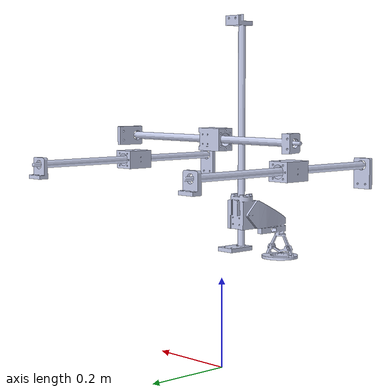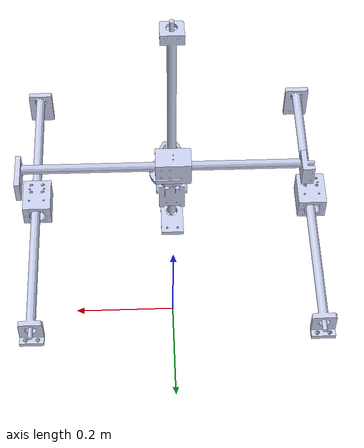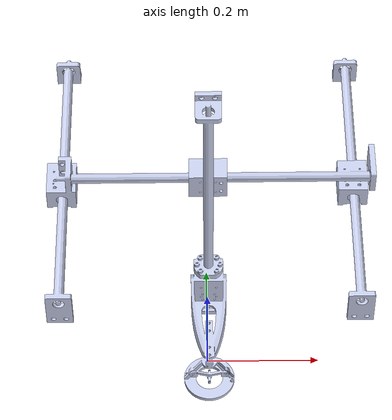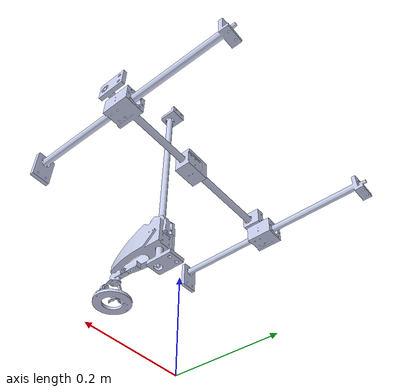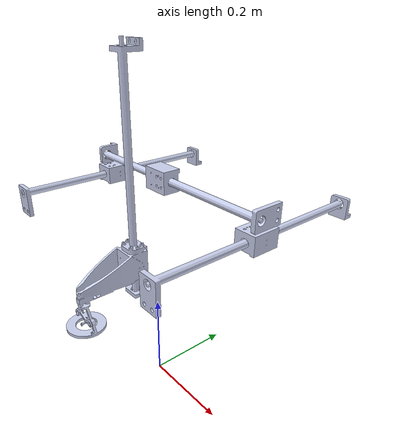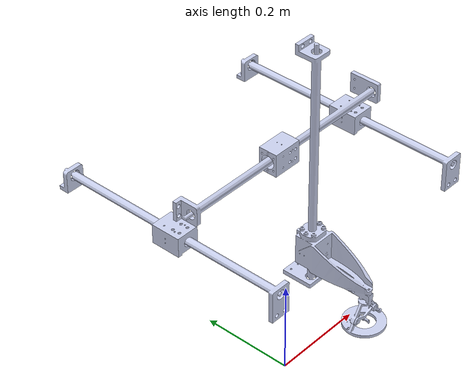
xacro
<?xml version="1.0" encoding="utf-8"?>
<robot xmlns:xacro="http://www.ros.org/wiki/xacro" name="gantry">

  <!-- Empty link to referr everything to -->
  <link name="world" />
  <!-- Include arm and hand xacro files-->
  <xacro:include filename="$(find gantry_test)/description/gantry.xacro" />

  <!-- call the arm macro-->
  <xacro:gantry />

  <xacro:include filename="$(find gantry_test)/description/gantry.gazebo.xacro" />
  <xacro:include filename="$(find gantry_test)/description/gantry.control.xacro" />
</robot>

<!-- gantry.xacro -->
<robot xmlns:xacro="http://www.ros.org/wiki/xacro" name="gantry">

  <xacro:macro name="gantry"
    params="arm_id:='gantry' description_pkg:='gantry_test' connected_to:='' xyz:='0 0 0' rpy:='0 0 0'">
    <xacro:unless value="${not connected_to}">
      <joint name="${arm_id}_joint_${connected_to}" type="fixed">
        <parent link="${connected_to}" />
        <child link="base_link_inertia" />
        <origin rpy="${rpy}" xyz="${xyz}" />
      </joint>
    </xacro:unless>

  <joint
    name="base_joint"
    type="fixed">
    <parent
      link="world" />
    <child
      link="base_link_inertia" />
    <origin rpy="0 0 0" xyz="0.0 0.0 0.0"/>
  </joint>

  <link
    name="base_link_inertia">
    <inertial>
      <origin
        xyz="0.00034882 0.032516 0.24303"
        rpy="0 0 0" />
      <mass
        value="10" />
      <inertia
        ixx="0.12532"
        ixy="-3.6303E-09"
        ixz="8.8835E-07"
        iyy="0.041971"
        iyz="-4.7939E-07"
        izz="0.13107" />
    </inertial>
    <visual>
      <origin
        xyz="0 0 0"
        rpy="0 0 0" />
      <geometry>
        <mesh
          filename="file://$(find gantry_test)/meshes/visual/base_link.stl" scale="0.001  0.001 0.001" />
      </geometry>
      <material
        name="">
        <color
          rgba="0.79216 0.81961 0.93333 1" />
      </material>
    </visual>
    <collision>
      <origin
        xyz="0 0 0"
        rpy="0 0 0" />
      <geometry>
        <mesh
          filename="file://$(find gantry_test)/meshes/collision/base_link.dae" scale="0.001  0.001 0.001" />
      </geometry>
    </collision>
  </link>
  <link
    name="x_link">
    <inertial>
      <origin
        xyz="-0.048186 0.050712 0.0022474"
        rpy="0 0 0" />
      <mass
        value="1.6" />
      <inertia
        ixx="0.00043215"
        ixy="1.9114E-09"
        ixz="2.3613E-07"
        iyy="0.011891"
        iyz="2.7571E-05"
        izz="0.01197" />
    </inertial>
    <visual>
      <origin
        xyz="0 0 0"
        rpy="0 0 0" />
      <geometry>
        <mesh
          filename="file://$(find gantry_test)/meshes/visual/x_link.stl" scale="0.001  0.001 0.001" />
      </geometry>
      <material
        name="">
        <color
          rgba="0.79216 0.81961 0.93333 1" />
      </material>
    </visual>
    <collision>
      <origin
        xyz="0 0 0"
        rpy="0 0 0" />
      <geometry>
        <mesh
          filename="file://$(find gantry_test)/meshes/collision/x_link.dae" scale="0.001  0.001 0.001" />
      </geometry>
    </collision>
  </link>
  <joint
    name="x_joint"
    type="prismatic">
    <origin
      xyz="0 0.05 0.45"
      rpy="1.5708 -2.0964E-05 0" />
    <parent
      link="base_link_inertia" />
    <child
      link="x_link" />
    <axis
      xyz="0 0 -1" />
    <limit
      lower="-0.17"
      upper="0.17"
      effort="100"
      velocity="1" />
  </joint>
  <link
    name="y_link">
    <inertial>
      <origin
        xyz="-0.11023 -0.047388 0.010097"
        rpy="0 0 0" />
      <mass
        value="1" />
      <inertia
        ixx="0.00027954"
        ixy="3.1449E-07"
        ixz="1.1171E-08"
        iyy="0.0072125"
        iyz="4.0095E-07"
        izz="0.0071657" />
    </inertial>
    <visual>
      <origin
        xyz="0 0 0"
        rpy="0 0 0" />
      <geometry>
        <mesh
          filename="file://$(find gantry_test)/meshes/visual/y_link.stl" scale="0.001  0.001 0.001" />
      </geometry>
      <material
        name="">
        <color
          rgba="0.79216 0.81961 0.93333 1" />
      </material>
    </visual>
    <collision>
      <origin
        xyz="0 0 0"
        rpy="0 0 0" />
      <geometry>
        <mesh
          filename="file://$(find gantry_test)/meshes/collision/y_link.dae" scale="0.001  0.001 0.001" />
      </geometry>
    </collision>
  </link>
  <joint
    name="y_joint"
    type="prismatic">
    <origin
      xyz="-0.01 0.053 0.0295"
      rpy="-1.5708 0 -1.5708" />
    <parent
      link="x_link" />
    <child
      link="y_link" />
    <axis
      xyz="0 0 1" />
    <limit
      lower="-0.16"
      upper="0.16"
      effort="100"
      velocity="1" />
  </joint>
  <link
    name="z_link">
    <inertial>
      <origin
        xyz="6.1912E-08 0.0017903 -0.037699"
        rpy="0 0 0" />
      <mass
        value="0.12177" />
      <inertia
        ixx="4.7832E-05"
        ixy="4.813E-11"
        ixz="5.2651E-11"
        iyy="5.6754E-05"
        iyz="4.1076E-07"
        izz="3.9828E-05" />
    </inertial>
    <visual>
      <origin
        xyz="0 0 0"
        rpy="0 0 0" />
      <geometry>
        <mesh
          filename="file://$(find gantry_test)/meshes/visual/z_link.stl" scale="0.001  0.001 0.001" />
      </geometry>
      <material
        name="">
        <color
          rgba="0.79216 0.81961 0.93333 1" />
      </material>
    </visual>
    <collision>
      <origin
        xyz="0 0 0"
        rpy="0 0 0" />
      <geometry>
        <mesh
          filename="file://$(find gantry_test)/meshes/collision/z_link.dae" scale="0.001  0.001 0.001" />
      </geometry>
    </collision>
  </link>
  <joint
    name="z_joint"
    type="prismatic">
    <origin
      xyz="0.2 -0.081053 0.011"
      rpy="0 1.5708 0" />
    <parent
      link="y_link" />
    <child
      link="z_link" />
    <axis
      xyz="0 0 -1" />
    <limit
      lower="0"
      upper="0.35"
      effort="100"
      velocity="1" />
    <dynamics damping="60.0" friction="4.0" />
  </joint>
  </xacro:macro>

</robot>
